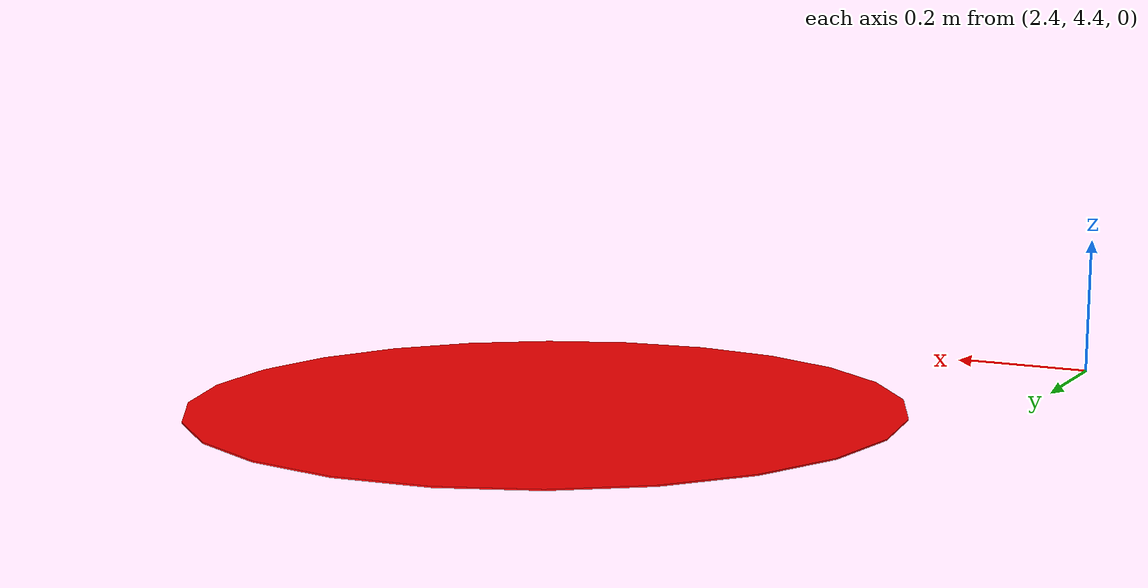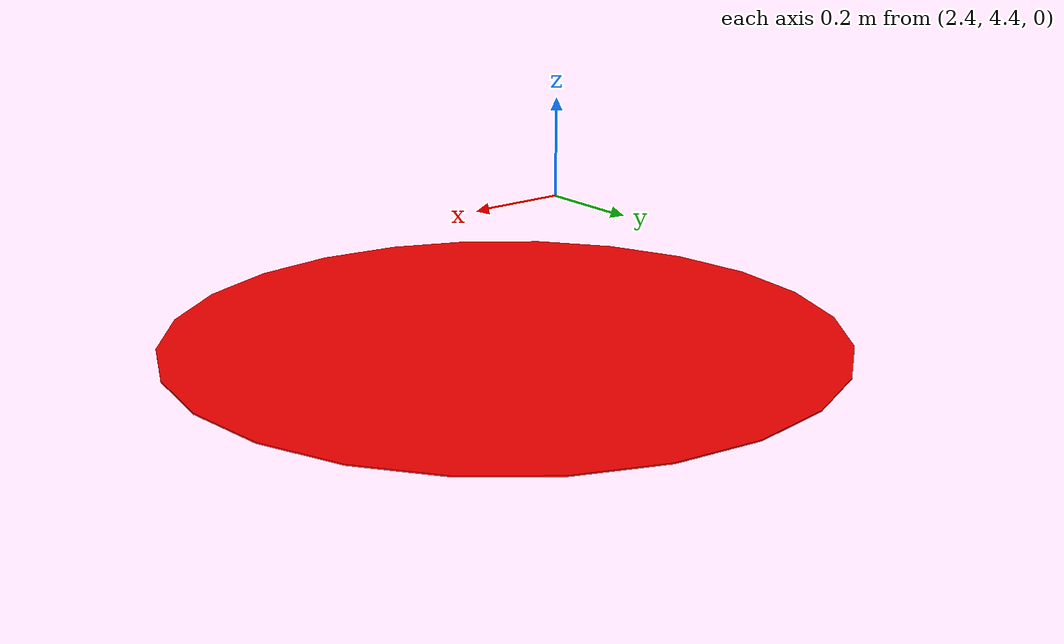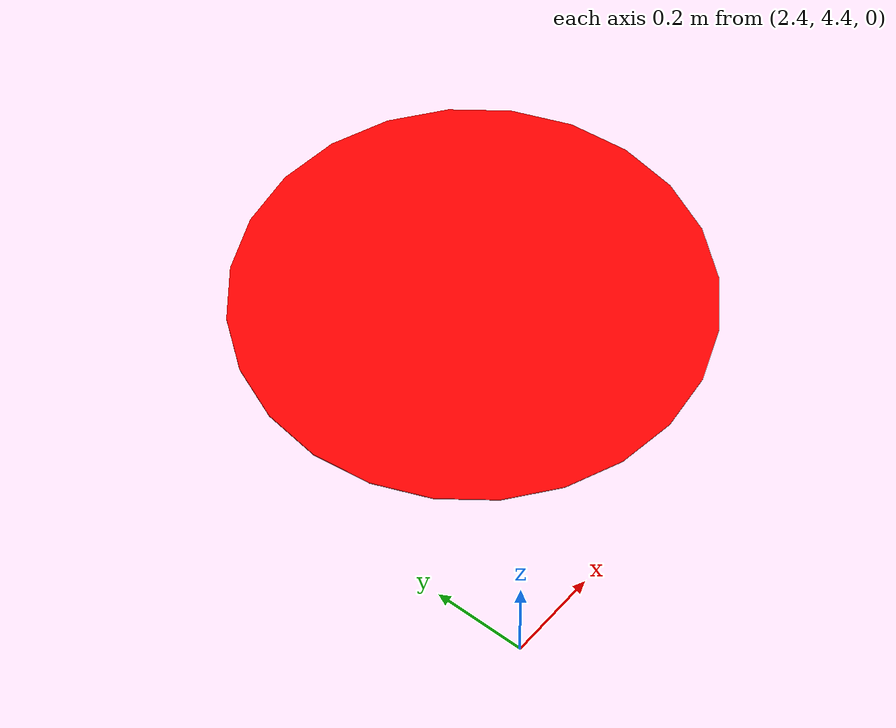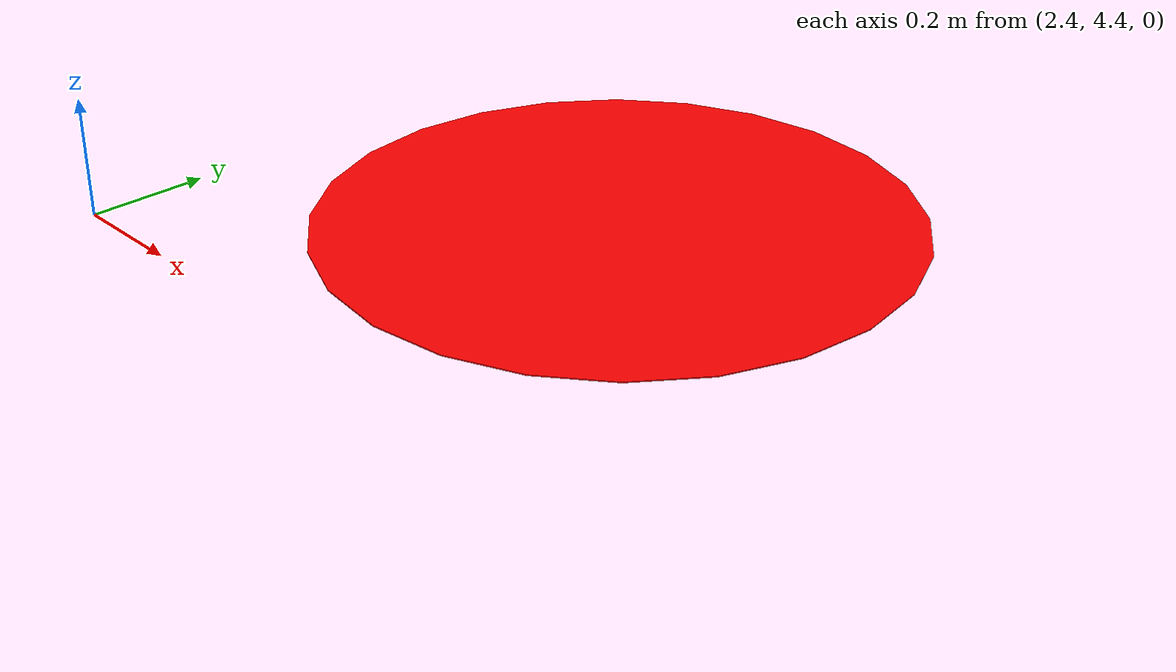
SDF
<?xml version="1.0" ?>
<sdf version="1.8">
    <model name="end_marker">
        <static>true</static>
        <pose>3.0 5.0 0.001 0 0 0</pose>
        <link name="link">
        <visual name="visual">
            <geometry>
            <cylinder>
                <radius>0.5</radius>
                <length>0.002</length>
            </cylinder>
            </geometry>
            <material>
            <ambient>1 0 0 1</ambient>
            <diffuse>1 0 0 1</diffuse>
            <emissive>0.5 0 0 1</emissive>
            </material>
        </visual>
        </link>
    </model>
</sdf>
